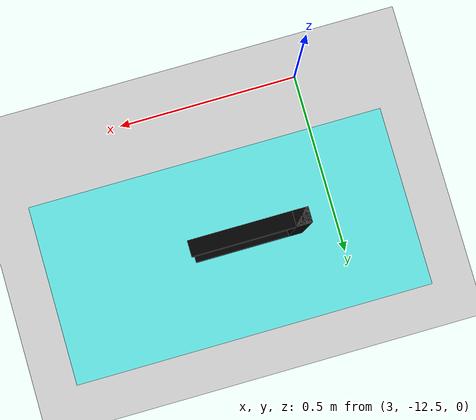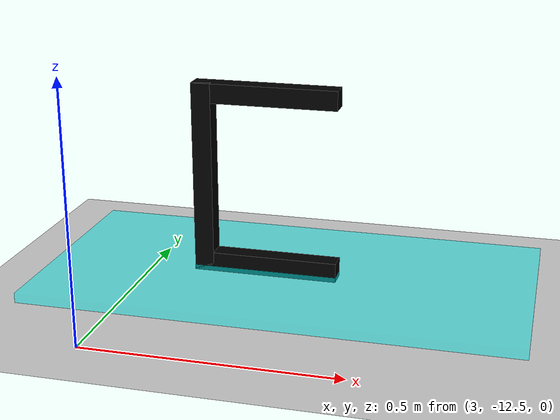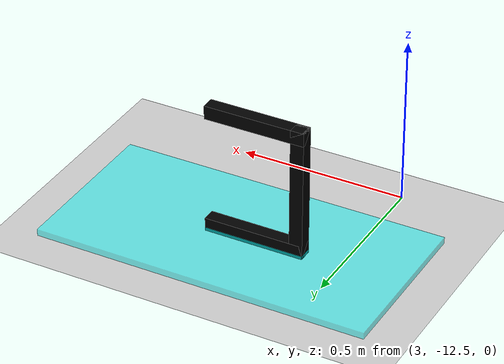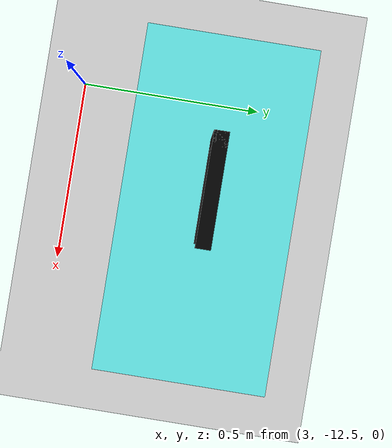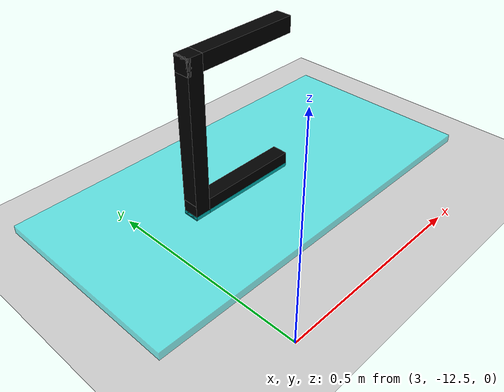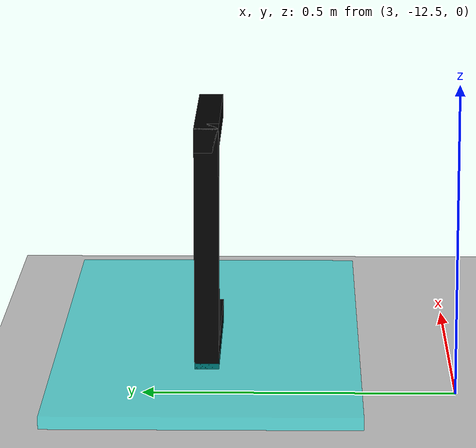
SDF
<sdf version="1.7">
 <world name="my_world">
  <model name="ground_plane">
   <static>1</static>
   <link name="link">
    <collision name="collision">
     <geometry><plane><normal>0 0 1</normal><size>100 100</size></plane></geometry>
     <surface>
      <contact><collide_bitmask>65535</collide_bitmask></contact>
      <friction><ode><mu>100</mu><mu2>50</mu2></ode></friction>
     </surface>
    </collision>
    <visual name="visual">
     <cast_shadows>0</cast_shadows>
     <geometry><plane><normal>0 0 1</normal><size>100 100</size></plane></geometry>
     <material>
      <script><uri>file://media/materials/scripts/gazebo.material</uri><name>Gazebo/Grey</name></script>
     </material>
    </visual>
   </link>
  </model>
  <model name="zone_c">
   <static>1</static>
   <pose>3.3 -12.1 0.01 0 0 0</pose>
   <link name="base">
    <visual name="visual">
     <geometry><box><size>1 0.5 0.02</size></box></geometry>
     <material><ambient>0 1 1 0.5</ambient><diffuse>0 1 1 0.5</diffuse></material>
    </visual>
   </link>
   <link name="letter_C_1">
    <pose>-0.05 0 0.38 0 -0 0</pose>
    <visual name="v">
     <geometry><box><size>0.3 0.04 0.04</size></box></geometry>
     <material><ambient>0 0 0 1</ambient><diffuse>0 0 0 1</diffuse></material>
    </visual>
   </link>
   <link name="letter_C_2">
    <pose>-0.05 0 0.02 0 -0 0</pose>
    <visual name="v">
     <geometry><box><size>0.3 0.04 0.04</size></box></geometry>
     <material><ambient>0 0 0 1</ambient><diffuse>0 0 0 1</diffuse></material>
    </visual>
   </link>
   <link name="letter_C_3">
    <pose>-0.18 0 0.2 0 -0 0</pose>
    <visual name="v">
     <geometry><box><size>0.04 0.04 0.4</size></box></geometry>
     <material><ambient>0 0 0 1</ambient><diffuse>0 0 0 1</diffuse></material>
    </visual>
   </link>
  </model>
 </world>
</sdf>
